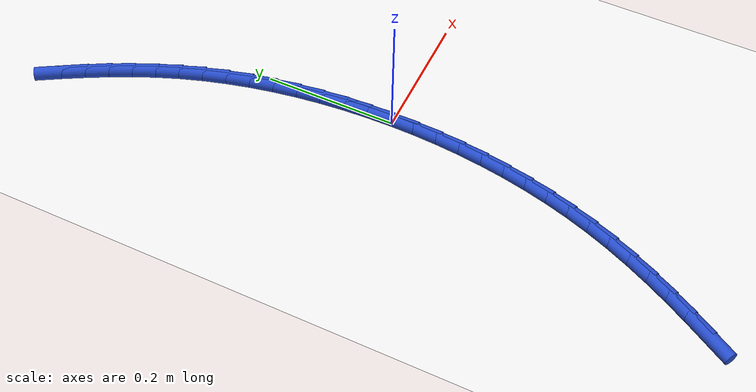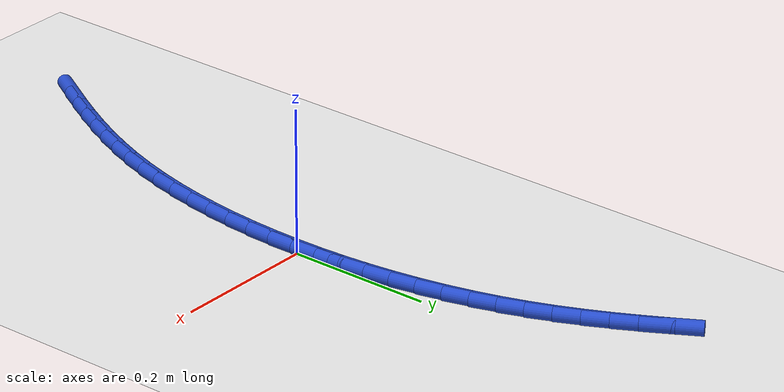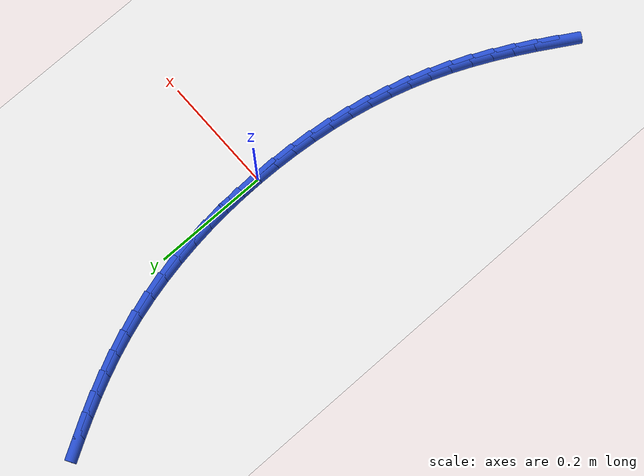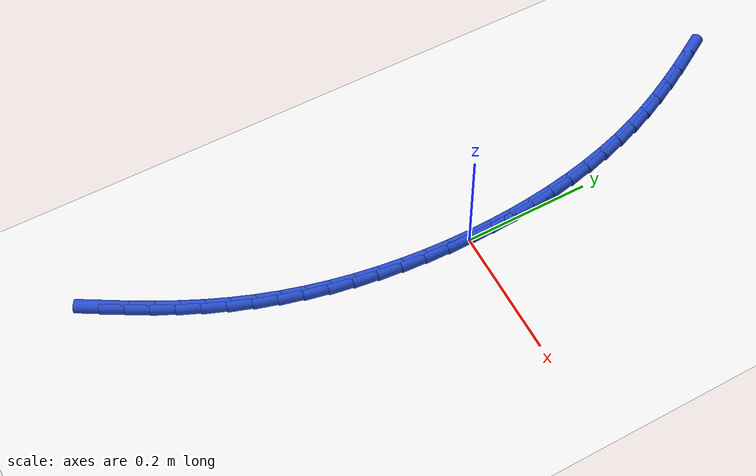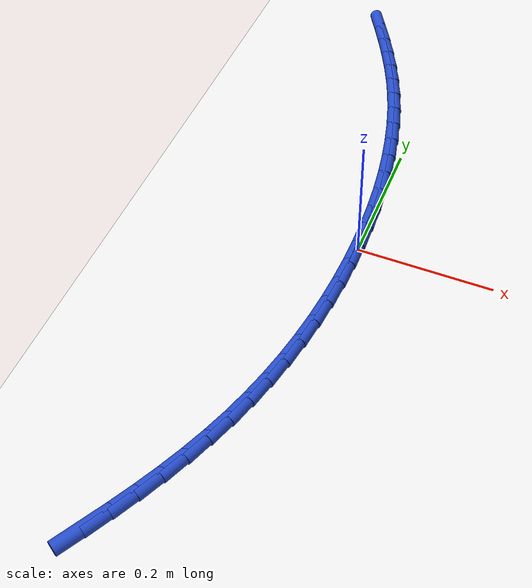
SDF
<sdf version="1.6">
 <world name="default">
  <model name="ground_plane">
   <static>1</static>
   <link name="link">
    <collision name="collision">
     <geometry><plane><normal>0 0 1</normal><size>100 100</size></plane></geometry>
     <surface><friction><ode><mu>100</mu><mu2>50</mu2></ode></friction></surface>
    </collision>
    <visual name="visual">
     <cast_shadows>0</cast_shadows>
     <geometry><plane><normal>0 0 1</normal><size>100 100</size></plane></geometry>
     <material>
      <script><uri>file://media/materials/scripts/gazebo.material</uri><name>Gazebo/WhiteGlow</name></script>
     </material>
    </visual>
   </link>
  </model>
  <model name="line">
   <link name="link_0">
    <pose>1.8214596497756474e-17 -2.0816681711721685e-17 0.01 0 1.57 -1.5531008753679438</pose>
    <collision name="collision">
     <geometry><cylinder><radius>0.01</radius><length>0.08</length></cylinder></geometry>
    </collision>
    <visual name="visual">
     <material>
      <script><name>Gazebo/Blue</name><uri>file://media/materials/scripts/gazebo.material</uri></script>
     </material>
     <geometry><cylinder><radius>0.01</radius><length>0.08</length></cylinder></geometry>
    </visual>
   </link>
   <link name="link_1">
    <pose>-0.0006595431757663852 0.03726801411950366 0.01 0 1.57 -1.5183915516718212</pose>
    <collision name="collision">
     <geometry><cylinder><radius>0.01</radius><length>0.08</length></cylinder></geometry>
    </collision>
    <visual name="visual">
     <material>
      <script><name>Gazebo/Blue</name><uri>file://media/materials/scripts/gazebo.material</uri></script>
     </material>
     <geometry><cylinder><radius>0.01</radius><length>0.08</length></cylinder></geometry>
    </visual>
   </link>
   <link name="link_2">
    <pose>-0.0026119037646673057 0.07448929837831636 0.01 0 1.57 -1.4829317528468102</pose>
    <collision name="collision">
     <geometry><cylinder><radius>0.01</radius><length>0.08</length></cylinder></geometry>
    </collision>
    <visual name="visual">
     <material>
      <script><name>Gazebo/Blue</name><uri>file://media/materials/scripts/gazebo.material</uri></script>
     </material>
     <geometry><cylinder><radius>0.01</radius><length>0.08</length></cylinder></geometry>
    </visual>
   </link>
   <link name="link_3">
    <pose>-0.005877130637790065 0.11155565723239855 0.01 0 1.57 -1.4465018681084476</pose>
    <collision name="collision">
     <geometry><cylinder><radius>0.01</radius><length>0.08</length></cylinder></geometry>
    </collision>
    <visual name="visual">
     <material>
      <script><name>Gazebo/Blue</name><uri>file://media/materials/scripts/gazebo.material</uri></script>
     </material>
     <geometry><cylinder><radius>0.01</radius><length>0.08</length></cylinder></geometry>
    </visual>
   </link>
   <link name="link_4">
    <pose>-0.010475272666221972 0.1483588951377105 0.01 0 1.57 -1.408877693254587</pose>
    <collision name="collision">
     <geometry><cylinder><radius>0.01</radius><length>0.08</length></cylinder></geometry>
    </collision>
    <visual name="visual">
     <material>
      <script><name>Gazebo/Blue</name><uri>file://media/materials/scripts/gazebo.material</uri></script>
     </material>
     <geometry><cylinder><radius>0.01</radius><length>0.08</length></cylinder></geometry>
    </visual>
   </link>
   <link name="link_5">
    <pose>-0.016426378721050343 0.18479081655021276 0.01 0 1.57 -1.3698292439418869</pose>
    <collision name="collision">
     <geometry><cylinder><radius>0.01</radius><length>0.08</length></cylinder></geometry>
    </collision>
    <visual name="visual">
     <material>
      <script><name>Gazebo/Blue</name><uri>file://media/materials/scripts/gazebo.material</uri></script>
     </material>
     <geometry><cylinder><radius>0.01</radius><length>0.08</length></cylinder></geometry>
    </visual>
   </link>
   <link name="link_6">
    <pose>-0.023750497673362493 0.22074322592586548 0.01 0 1.57 -1.3291203028907255</pose>
    <collision name="collision">
     <geometry><cylinder><radius>0.01</radius><length>0.08</length></cylinder></geometry>
    </collision>
    <visual name="visual">
     <material>
      <script><name>Gazebo/Blue</name><uri>file://media/materials/scripts/gazebo.material</uri></script>
     </material>
     <geometry><cylinder><radius>0.01</radius><length>0.08</length></cylinder></geometry>
    </visual>
   </link>
   <link name="link_7">
    <pose>-0.032467678394245726 0.2561079277206291 0.01 0 1.57 -1.2865089506136929</pose>
    <collision name="collision">
     <geometry><cylinder><radius>0.01</radius><length>0.08</length></cylinder></geometry>
    </collision>
    <visual name="visual">
     <material>
      <script><name>Gazebo/Blue</name><uri>file://media/materials/scripts/gazebo.material</uri></script>
     </material>
     <geometry><cylinder><radius>0.01</radius><length>0.08</length></cylinder></geometry>
    </visual>
   </link>
   <link name="link_8">
    <pose>-0.04259796975478737 0.29077672639046404 0.01 0 1.57 -1.2417494147548045</pose>
    <collision name="collision">
     <geometry><cylinder><radius>0.01</radius><length>0.08</length></cylinder></geometry>
    </collision>
    <visual name="visual">
     <material>
      <script><name>Gazebo/Blue</name><uri>file://media/materials/scripts/gazebo.material</uri></script>
     </material>
     <geometry><cylinder><radius>0.01</radius><length>0.08</length></cylinder></geometry>
    </visual>
   </link>
   <link name="link_9">
    <pose>-0.054161420626074736 0.32464142639133076 0.01 0 1.57 -1.1957938986238141</pose>
    <collision name="collision">
     <geometry><cylinder><radius>0.01</radius><length>0.08</length></cylinder></geometry>
    </collision>
    <visual name="visual">
     <material>
      <script><name>Gazebo/Blue</name><uri>file://media/materials/scripts/gazebo.material</uri></script>
     </material>
     <geometry><cylinder><radius>0.01</radius><length>0.08</length></cylinder></geometry>
    </visual>
   </link>
   <link name="link_10">
    <pose>-0.06714964277834262 0.35763749528626704 0.01 0 1.57 -1.153555321344448</pose>
    <collision name="collision">
     <geometry><cylinder><radius>0.01</radius><length>0.08</length></cylinder></geometry>
    </collision>
    <visual name="visual">
     <material>
      <script><name>Gazebo/Blue</name><uri>file://media/materials/scripts/gazebo.material</uri></script>
     </material>
     <geometry><cylinder><radius>0.01</radius><length>0.08</length></cylinder></geometry>
    </visual>
   </link>
   <link name="link_11">
    <pose>-0.08143990546992474 0.3898759652771447 0.01 0 1.57 -1.1167319706516843</pose>
    <collision name="collision">
     <geometry><cylinder><radius>0.01</radius><length>0.08</length></cylinder></geometry>
    </collision>
    <visual name="visual">
     <material>
      <script><name>Gazebo/Blue</name><uri>file://media/materials/scripts/gazebo.material</uri></script>
     </material>
     <geometry><cylinder><radius>0.01</radius><length>0.08</length></cylinder></geometry>
    </visual>
   </link>
   <link name="link_12">
    <pose>-0.09688074302912315 0.42151198896802916 0.01 0 1.57 -1.0856952835334408</pose>
    <collision name="collision">
     <geometry><cylinder><radius>0.01</radius><length>0.08</length></cylinder></geometry>
    </collision>
    <visual name="visual">
     <material>
      <script><name>Gazebo/Blue</name><uri>file://media/materials/scripts/gazebo.material</uri></script>
     </material>
     <geometry><cylinder><radius>0.01</radius><length>0.08</length></cylinder></geometry>
    </visual>
   </link>
   <link name="link_13">
    <pose>-0.11332068978409014 0.45270071896321595 0.01 0 1.57 -1.0606653323818236</pose>
    <collision name="collision">
     <geometry><cylinder><radius>0.01</radius><length>0.08</length></cylinder></geometry>
    </collision>
    <visual name="visual">
     <material>
      <script><name>Gazebo/Blue</name><uri>file://media/materials/scripts/gazebo.material</uri></script>
     </material>
     <geometry><cylinder><radius>0.01</radius><length>0.08</length></cylinder></geometry>
    </visual>
   </link>
   <link name="link_14">
    <pose>-0.13060828006297803 0.48359730786700056 0.01 0 1.57 -1.0417359936471429</pose>
    <collision name="collision">
     <geometry><cylinder><radius>0.01</radius><length>0.08</length></cylinder></geometry>
    </collision>
    <visual name="visual">
     <material>
      <script><name>Gazebo/Blue</name><uri>file://media/materials/scripts/gazebo.material</uri></script>
     </material>
     <geometry><cylinder><radius>0.01</radius><length>0.08</length></cylinder></geometry>
    </visual>
   </link>
   <link name="link_175">
    <pose>-0.15066797027224965 -0.5196714321265263 0.01 0 1.57 1.0374402010861974</pose>
    <collision name="collision">
     <geometry><cylinder><radius>0.01</radius><length>0.08</length></cylinder></geometry>
    </collision>
    <visual name="visual">
     <material>
      <script><name>Gazebo/Blue</name><uri>file://media/materials/scripts/gazebo.material</uri></script>
     </material>
     <geometry><cylinder><radius>0.01</radius><length>0.08</length></cylinder></geometry>
    </visual>
   </link>
   <link name="link_176">
    <pose>-0.1319855269824681 -0.48802955983293234 0.01 0 1.57 1.0613566495685642</pose>
    <collision name="collision">
     <geometry><cylinder><radius>0.01</radius><length>0.08</length></cylinder></geometry>
    </collision>
    <visual name="visual">
     <material>
      <script><name>Gazebo/Blue</name><uri>file://media/materials/scripts/gazebo.material</uri></script>
     </material>
     <geometry><cylinder><radius>0.01</radius><length>0.08</length></cylinder></geometry>
    </visual>
   </link>
   <link name="link_177">
    <pose>-0.11418203754453864 -0.45615926517453237 0.01 0 1.57 1.089629345261211</pose>
    <collision name="collision">
     <geometry><cylinder><radius>0.01</radius><length>0.08</length></cylinder></geometry>
    </collision>
    <visual name="visual">
     <material>
      <script><name>Gazebo/Blue</name><uri>file://media/materials/scripts/gazebo.material</uri></script>
     </material>
     <geometry><cylinder><radius>0.01</radius><length>0.08</length></cylinder></geometry>
    </visual>
   </link>
   <link name="link_178">
    <pose>-0.09737768519373113 -0.4239728783055773 0.01 0 1.57 1.1222354342078198</pose>
    <collision name="collision">
     <geometry><cylinder><radius>0.01</radius><length>0.08</length></cylinder></geometry>
    </collision>
    <visual name="visual">
     <material>
      <script><name>Gazebo/Blue</name><uri>file://media/materials/scripts/gazebo.material</uri></script>
     </material>
     <geometry><cylinder><radius>0.01</radius><length>0.08</length></cylinder></geometry>
    </visual>
   </link>
   <link name="link_179">
    <pose>-0.08169265316531554 -0.3913827293803181 0.01 0 1.57 1.1590879685440234</pose>
    <collision name="collision">
     <geometry><cylinder><radius>0.01</radius><length>0.08</length></cylinder></geometry>
    </collision>
    <visual name="visual">
     <material>
      <script><name>Gazebo/Blue</name><uri>file://media/materials/scripts/gazebo.material</uri></script>
     </material>
     <geometry><cylinder><radius>0.01</radius><length>0.08</length></cylinder></geometry>
    </visual>
   </link>
   <link name="link_180">
    <pose>-0.06724712469456101 -0.3583011485530043 0.01 0 1.57 1.2000192008499995</pose>
    <collision name="collision">
     <geometry><cylinder><radius>0.01</radius><length>0.08</length></cylinder></geometry>
    </collision>
    <visual name="visual">
     <material>
      <script><name>Gazebo/Blue</name><uri>file://media/materials/scripts/gazebo.material</uri></script>
     </material>
     <geometry><cylinder><radius>0.01</radius><length>0.08</length></cylinder></geometry>
    </visual>
   </link>
   <link name="link_181">
    <pose>-0.05416128301661265 -0.32464046597802226 0.01 0 1.57 1.2439087742133899</pose>
    <collision name="collision">
     <geometry><cylinder><radius>0.01</radius><length>0.08</length></cylinder></geometry>
    </collision>
    <visual name="visual">
     <material>
      <script><name>Gazebo/Blue</name><uri>file://media/materials/scripts/gazebo.material</uri></script>
     </material>
     <geometry><cylinder><radius>0.01</radius><length>0.08</length></cylinder></geometry>
    </visual>
   </link>
   <link name="link_182">
    <pose>-0.04253132570067029 -0.2903389625576882 0.01 0 1.57 1.2871626310745605</pose>
    <collision name="collision">
     <geometry><cylinder><radius>0.01</radius><length>0.08</length></cylinder></geometry>
    </collision>
    <visual name="visual">
     <material>
      <script><name>Gazebo/Blue</name><uri>file://media/materials/scripts/gazebo.material</uri></script>
     </material>
     <geometry><cylinder><radius>0.01</radius><length>0.08</length></cylinder></geometry>
    </visual>
   </link>
   <link name="link_183">
    <pose>-0.032358006154742554 -0.25543818284245795 0.01 0 1.57 1.3289688784963232</pose>
    <collision name="collision">
     <geometry><cylinder><radius>0.01</radius><length>0.08</length></cylinder></geometry>
    </collision>
    <visual name="visual">
     <material>
      <script><name>Gazebo/Blue</name><uri>file://media/materials/scripts/gazebo.material</uri></script>
     </material>
     <geometry><cylinder><radius>0.01</radius><length>0.08</length></cylinder></geometry>
    </visual>
   </link>
   <link name="link_184">
    <pose>-0.023618340725333524 -0.22000535315877479 0.01 0 1.57 1.3694005074742208</pose>
    <collision name="collision">
     <geometry><cylinder><radius>0.01</radius><length>0.08</length></cylinder></geometry>
    </collision>
    <visual name="visual">
     <material>
      <script><name>Gazebo/Blue</name><uri>file://media/materials/scripts/gazebo.material</uri></script>
     </material>
     <geometry><cylinder><radius>0.01</radius><length>0.08</length></cylinder></geometry>
    </visual>
   </link>
   <link name="link_185">
    <pose>-0.016289345758947252 -0.18410769983308228 0.01 0 1.57 1.4085415376965402</pose>
    <collision name="collision">
     <geometry><cylinder><radius>0.01</radius><length>0.08</length></cylinder></geometry>
    </collision>
    <visual name="visual">
     <material>
      <script><name>Gazebo/Blue</name><uri>file://media/materials/scripts/gazebo.material</uri></script>
     </material>
     <geometry><cylinder><radius>0.01</radius><length>0.08</length></cylinder></geometry>
    </visual>
   </link>
   <link name="link_186">
    <pose>-0.010348037602087934 -0.14781244919182465 0.01 0 1.57 1.4464842839114365</pose>
    <collision name="collision">
     <geometry><cylinder><radius>0.01</radius><length>0.08</length></cylinder></geometry>
    </collision>
    <visual name="visual">
     <material>
      <script><name>Gazebo/Blue</name><uri>file://media/materials/scripts/gazebo.material</uri></script>
     </material>
     <geometry><cylinder><radius>0.01</radius><length>0.08</length></cylinder></geometry>
    </visual>
   </link>
   <link name="link_187">
    <pose>-0.005771432601259391 -0.11118682756144363 0.01 0 1.57 1.4833271126545187</pose>
    <collision name="collision">
     <geometry><cylinder><radius>0.01</radius><length>0.08</length></cylinder></geometry>
    </collision>
    <visual name="visual">
     <material>
      <script><name>Gazebo/Blue</name><uri>file://media/materials/scripts/gazebo.material</uri></script>
     </material>
     <geometry><cylinder><radius>0.01</radius><length>0.08</length></cylinder></geometry>
    </visual>
   </link>
   <link name="link_188">
    <pose>-0.002536547102965835 -0.0742980612683836 0.01 0 1.57 1.519172666386007</pose>
    <collision name="collision">
     <geometry><cylinder><radius>0.01</radius><length>0.08</length></cylinder></geometry>
    </collision>
    <visual name="visual">
     <material>
      <script><name>Gazebo/Blue</name><uri>file://media/materials/scripts/gazebo.material</uri></script>
     </material>
     <geometry><cylinder><radius>0.01</radius><length>0.08</length></cylinder></geometry>
    </visual>
   </link>
   <link name="link_189">
    <pose>-0.0006203974537113445 -0.03721337663908802 0.01 0 1.57 1.5541265149481602</pose>
    <collision name="collision">
     <geometry><cylinder><radius>0.01</radius><length>0.08</length></cylinder></geometry>
    </collision>
    <visual name="visual">
     <material>
      <script><name>Gazebo/Blue</name><uri>file://media/materials/scripts/gazebo.material</uri></script>
     </material>
     <geometry><cylinder><radius>0.01</radius><length>0.08</length></cylinder></geometry>
    </visual>
   </link>
   <link name="link_190">
    <pose>5.204170427930421e-18 -2.5673907444456745e-16 0.01 0 1.57 -1.5532964676086374</pose>
    <collision name="collision">
     <geometry><cylinder><radius>0.01</radius><length>0.08</length></cylinder></geometry>
    </collision>
    <visual name="visual">
     <material>
      <script><name>Gazebo/Blue</name><uri>file://media/materials/scripts/gazebo.material</uri></script>
     </material>
     <geometry><cylinder><radius>0.01</radius><length>0.08</length></cylinder></geometry>
    </visual>
   </link>
   <link name="link_191">
    <pose>-0.0006523710883358548 0.03727484232243619 0.01 0 1.57 -1.553296467608637</pose>
    <collision name="collision">
     <geometry><cylinder><radius>0.01</radius><length>0.08</length></cylinder></geometry>
    </collision>
    <visual name="visual">
     <material>
      <script><name>Gazebo/Blue</name><uri>file://media/materials/scripts/gazebo.material</uri></script>
     </material>
     <geometry><cylinder><radius>0.01</radius><length>0.08</length></cylinder></geometry>
    </visual>
   </link>
  </model>
 </world>
</sdf>
